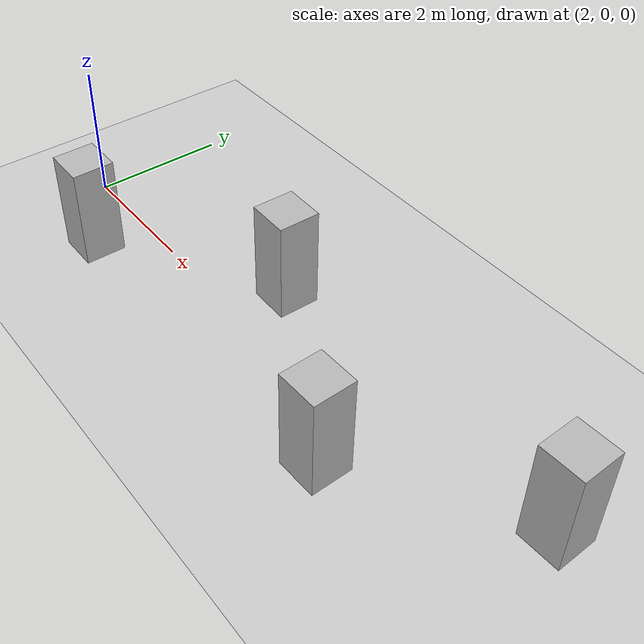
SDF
<?xml version="1.0"?>
<sdf version="1.6">
  <world name="v2-04g-static-s4909">
    <gravity>0 0 -9.81</gravity>
    <physics name="v2_deterministic" type="ode">
      <max_step_size>0.002</max_step_size>
      <real_time_update_rate>500</real_time_update_rate>
    </physics>
    <include>
      <uri>model://sun</uri>
    </include>
    <include>
      <uri>model://ground_plane</uri>
    </include>
    <model name="pillar-1">
      <static>true</static>
      <pose>3.191593827 -0.803460748 0.750000000 0 0 -0.002140100</pose>
      <link name="link">
        <collision name="collision">
          <geometry>
            <box>
              <size>0.600000 0.600000 1.500000</size>
            </box>
          </geometry>
        </collision>
        <visual name="visual">
          <geometry>
            <box>
              <size>0.600000 0.600000 1.500000</size>
            </box>
          </geometry>
        </visual>
      </link>
    </model>
    <model name="pillar-2">
      <static>true</static>
      <pose>5.772251557 0.751324614 0.750000000 0 0 -0.016867072</pose>
      <link name="link">
        <collision name="collision">
          <geometry>
            <box>
              <size>0.600000 0.600000 1.500000</size>
            </box>
          </geometry>
        </collision>
        <visual name="visual">
          <geometry>
            <box>
              <size>0.600000 0.600000 1.500000</size>
            </box>
          </geometry>
        </visual>
      </link>
    </model>
    <model name="pillar-3">
      <static>true</static>
      <pose>8.321276686 -0.721321676 0.750000000 0 0 0.024214615</pose>
      <link name="link">
        <collision name="collision">
          <geometry>
            <box>
              <size>0.600000 0.600000 1.500000</size>
            </box>
          </geometry>
        </collision>
        <visual name="visual">
          <geometry>
            <box>
              <size>0.600000 0.600000 1.500000</size>
            </box>
          </geometry>
        </visual>
      </link>
    </model>
    <model name="pillar-4">
      <static>true</static>
      <pose>10.647894034 0.775435930 0.750000000 0 0 0.027231419</pose>
      <link name="link">
        <collision name="collision">
          <geometry>
            <box>
              <size>0.600000 0.600000 1.500000</size>
            </box>
          </geometry>
        </collision>
        <visual name="visual">
          <geometry>
            <box>
              <size>0.600000 0.600000 1.500000</size>
            </box>
          </geometry>
        </visual>
      </link>
    </model>
  </world>
</sdf>
